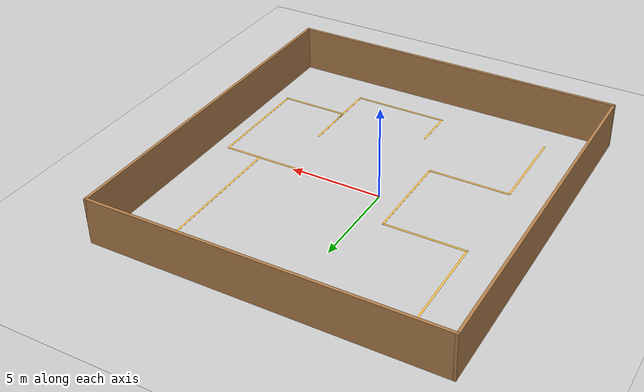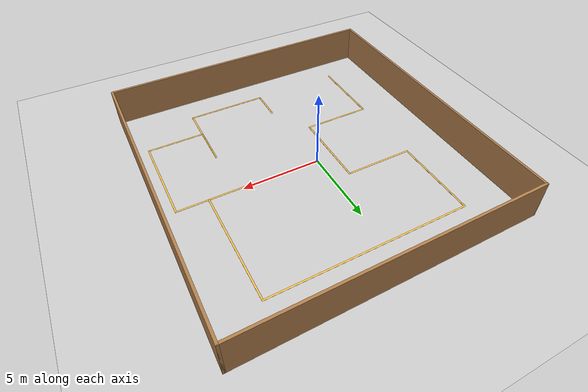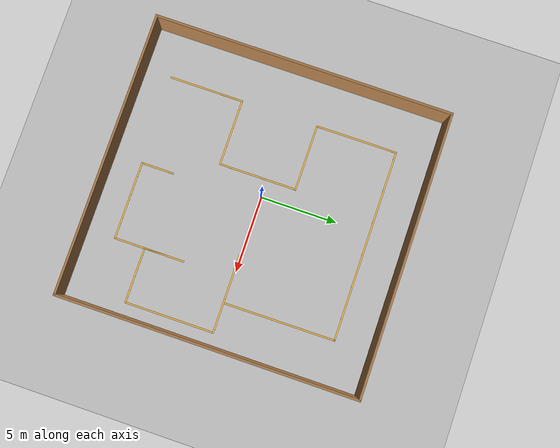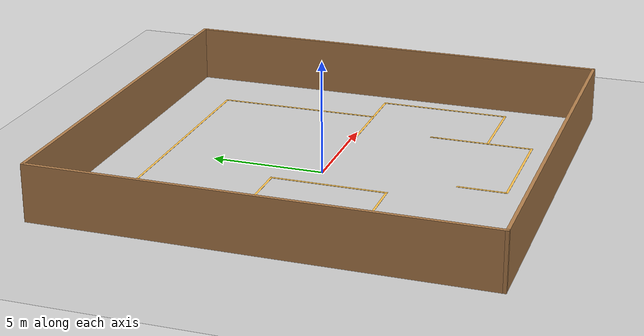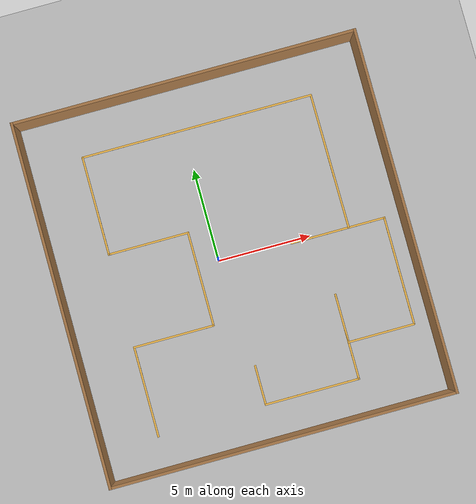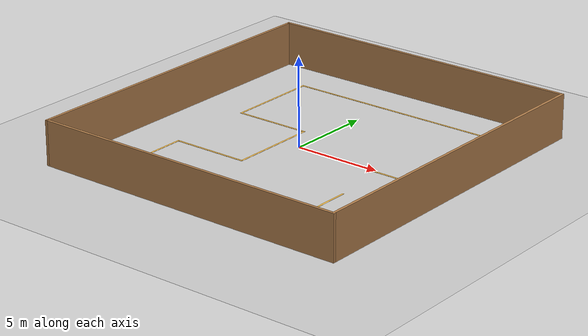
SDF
<sdf version="1.7">
 <world name="default">
  <light name="sun" type="directional">
   <pose>0 0 10 0 -0 0</pose>
   <diffuse>0.8 0.8 0.8 1</diffuse>
   <specular>0.2 0.2 0.2 1</specular>
   <attenuation>
    <range>1000</range>
    <constant>0.9</constant>
    <linear>0.01</linear>
    <quadratic>0.001</quadratic>
   </attenuation>
   <direction>-0.5 0.1 -0.9</direction>
   <spot><inner_angle>0</inner_angle><outer_angle>0</outer_angle><falloff>0</falloff></spot>
  </light>
  <model name="ground_plane">
   <static>1</static>
   <link name="link">
    <collision name="collision">
     <geometry><plane><normal>0 0 1</normal><size>100 100</size></plane></geometry>
     <surface><friction><ode><mu>100</mu><mu2>50</mu2></ode></friction></surface>
    </collision>
    <visual name="visual">
     <cast_shadows>0</cast_shadows>
     <geometry><plane><normal>0 0 1</normal><size>100 100</size></plane></geometry>
     <material>
      <script><uri>file://media/materials/scripts/gazebo.material</uri><name>Gazebo/Grey</name></script>
     </material>
    </visual>
   </link>
  </model>
  <gravity>0 0 -9.8</gravity>
  <magnetic_field>6e-06 2.3e-05 -4.2e-05</magnetic_field>
  <atmosphere type="adiabatic"/>
  <physics type="ode">
   <max_step_size>0.001</max_step_size>
   <real_time_factor>1</real_time_factor>
   <real_time_update_rate>1000</real_time_update_rate>
  </physics>
  <scene><ambient>0.4 0.4 0.4 1</ambient><background>0.7 0.7 0.7 1</background><shadows>1</shadows></scene>
  <audio><device>default</device></audio>
  <spherical_coordinates>
   <surface_model>EARTH_WGS84</surface_model>
   <latitude_deg>0</latitude_deg>
   <longitude_deg>0</longitude_deg>
   <elevation>0</elevation>
   <heading_deg>0</heading_deg>
  </spherical_coordinates>
  <model name="world">
   <pose>0.752345 -0.14285 0 0 -0 0</pose>
   <link name="Wall_30">
    <collision name="Wall_30_Collision">
     <geometry><box><size>19.5 0.15 2.5</size></box></geometry>
     <pose>0 0 1.25 0 -0 0</pose>
    </collision>
    <visual name="Wall_30_Visual">
     <pose>0 0 1.25 0 -0 0</pose>
     <geometry><box><size>19.5 0.15 2.5</size></box></geometry>
     <material>
      <script><uri>file://media/materials/scripts/gazebo.material</uri><name>Gazebo/Wood</name></script>
      <ambient>1 1 1 1</ambient>
     </material>
     <meta><layer>0</layer></meta>
    </visual>
    <pose>-9.175 0 0 0 -0 1.5708</pose>
   </link>
   <link name="Wall_31">
    <collision name="Wall_31_Collision">
     <geometry><box><size>18.5 0.15 2.5</size></box></geometry>
     <pose>0 0 1.25 0 -0 0</pose>
    </collision>
    <visual name="Wall_31_Visual">
     <pose>0 0 1.25 0 -0 0</pose>
     <geometry><box><size>18.5 0.15 2.5</size></box></geometry>
     <material>
      <script><uri>file://media/materials/scripts/gazebo.material</uri><name>Gazebo/Wood</name></script>
      <ambient>1 1 1 1</ambient>
     </material>
     <meta><layer>0</layer></meta>
    </visual>
    <pose>0 9.675 0 0 -0 0</pose>
   </link>
   <link name="Wall_32">
    <collision name="Wall_32_Collision">
     <geometry><box><size>19.5 0.15 2.5</size></box></geometry>
     <pose>0 0 1.25 0 -0 0</pose>
    </collision>
    <visual name="Wall_32_Visual">
     <pose>0 0 1.25 0 -0 0</pose>
     <geometry><box><size>19.5 0.15 2.5</size></box></geometry>
     <material>
      <script><uri>file://media/materials/scripts/gazebo.material</uri><name>Gazebo/Wood</name></script>
      <ambient>1 1 1 1</ambient>
     </material>
     <meta><layer>0</layer></meta>
    </visual>
    <pose>9.175 0 0 0 -0 -1.5708</pose>
   </link>
   <link name="Wall_33">
    <collision name="Wall_33_Collision">
     <geometry><box><size>18.5 0.15 2.5</size></box></geometry>
     <pose>0 0 1.25 0 -0 0</pose>
    </collision>
    <visual name="Wall_33_Visual">
     <pose>0 0 1.25 0 -0 0</pose>
     <geometry><box><size>18.5 0.15 2.5</size></box></geometry>
     <material>
      <script><uri>file://media/materials/scripts/gazebo.material</uri><name>Gazebo/Wood</name></script>
      <ambient>1 1 1 1</ambient>
     </material>
     <meta><layer>0</layer></meta>
    </visual>
    <pose>0 -9.675 0 0 -0 3.14159</pose>
   </link>
   <link name="Wall_35">
    <collision name="Wall_35_Collision">
     <geometry><box><size>4.94963 0.1 0.01</size></box></geometry>
     <pose>0 0 0.005 0 -0 0</pose>
    </collision>
    <visual name="Wall_35_Visual">
     <pose>0 0 0.005 0 -0 0</pose>
     <geometry><box><size>4.94963 0.1 0.01</size></box></geometry>
     <material>
      <script><uri>file://media/materials/scripts/gazebo.material</uri><name>Gazebo/Grey</name></script>
      <ambient>1 0.764706 0.305882 1</ambient>
     </material>
     <meta><layer>0</layer></meta>
    </visual>
    <pose>-6.28535 -5.50215 0 0 -0 1.5708</pose>
   </link>
   <link name="Wall_36">
    <collision name="Wall_36_Collision">
     <geometry><box><size>4.45 0.1 0.01</size></box></geometry>
     <pose>0 0 0.005 0 -0 0</pose>
    </collision>
    <visual name="Wall_36_Visual">
     <pose>0 0 0.005 0 -0 0</pose>
     <geometry><box><size>4.45 0.1 0.01</size></box></geometry>
     <material>
      <script><uri>file://media/materials/scripts/gazebo.material</uri><name>Gazebo/Grey</name></script>
      <ambient>1 0.764706 0.305882 1</ambient>
     </material>
     <meta><layer>0</layer></meta>
    </visual>
    <pose>-4.11034 -3.07715 0 0 -0 0</pose>
   </link>
   <link name="Wall_37">
    <collision name="Wall_37_Collision">
     <geometry><box><size>5.19963 0.1 0.01</size></box></geometry>
     <pose>0 0 0.005 0 -0 0</pose>
    </collision>
    <visual name="Wall_37_Visual">
     <pose>0 0 0.005 0 -0 0</pose>
     <geometry><box><size>5.19963 0.1 0.01</size></box></geometry>
     <material>
      <script><uri>file://media/materials/scripts/gazebo.material</uri><name>Gazebo/Grey</name></script>
      <ambient>1 0.764706 0.305882 1</ambient>
     </material>
     <meta><layer>0</layer></meta>
    </visual>
    <pose>-1.93535 -0.52715 0 0 -0 1.5708</pose>
   </link>
   <link name="Wall_38">
    <collision name="Wall_38_Collision">
     <geometry><box><size>4.44982 0.1 0.01</size></box></geometry>
     <pose>0 0 0.005 0 -0 0</pose>
    </collision>
    <visual name="Wall_38_Visual">
     <pose>0 0 0.005 0 -0 0</pose>
     <geometry><box><size>4.44982 0.1 0.01</size></box></geometry>
     <material>
      <script><uri>file://media/materials/scripts/gazebo.material</uri><name>Gazebo/Grey</name></script>
      <ambient>1 0.764706 0.305882 1</ambient>
     </material>
     <meta><layer>0</layer></meta>
    </visual>
    <pose>-4.11034 2.02285 0 0 -0 3.14159</pose>
   </link>
   <link name="Wall_39">
    <collision name="Wall_39_Collision">
     <geometry><box><size>5.44963 0.1 0.01</size></box></geometry>
     <pose>0 0 0.005 0 -0 0</pose>
    </collision>
    <visual name="Wall_39_Visual">
     <pose>0 0 0.005 0 -0 0</pose>
     <geometry><box><size>5.44963 0.1 0.01</size></box></geometry>
     <material>
      <script><uri>file://media/materials/scripts/gazebo.material</uri><name>Gazebo/Grey</name></script>
      <ambient>1 0.764706 0.305882 1</ambient>
     </material>
     <meta><layer>0</layer></meta>
    </visual>
    <pose>-6.28535 4.69785 0 0 -0 1.5708</pose>
   </link>
   <link name="Wall_40">
    <collision name="Wall_40_Collision">
     <geometry><box><size>12.7002 0.1 0.01</size></box></geometry>
     <pose>0 0 0.005 0 -0 0</pose>
    </collision>
    <visual name="Wall_40_Visual">
     <pose>0 0 0.005 0 -0 0</pose>
     <geometry><box><size>12.7002 0.1 0.01</size></box></geometry>
     <material>
      <script><uri>file://media/materials/scripts/gazebo.material</uri><name>Gazebo/Grey</name></script>
      <ambient>1 0.764706 0.305882 1</ambient>
     </material>
     <meta><layer>0</layer></meta>
    </visual>
    <pose>0.014655 7.37285 0 0 -0 0</pose>
   </link>
   <link name="Wall_41">
    <collision name="Wall_41_Collision">
     <geometry><box><size>7.41019 0.1 0.01</size></box></geometry>
     <pose>0 0 0.005 0 -0 0</pose>
    </collision>
    <visual name="Wall_41_Visual">
     <pose>0 0 0.005 0 -0 0</pose>
     <geometry><box><size>7.41019 0.1 0.01</size></box></geometry>
     <material>
      <script><uri>file://media/materials/scripts/gazebo.material</uri><name>Gazebo/Grey</name></script>
      <ambient>1 0.764706 0.305882 1</ambient>
     </material>
     <meta><layer>0</layer></meta>
    </visual>
    <pose>6.33462 3.71781 0 0 -0 -1.56533</pose>
   </link>
   <link name="Wall_44">
    <collision name="Wall_44_Collision">
     <geometry><box><size>5.95 0.1 0.01</size></box></geometry>
     <pose>0 0 0.005 0 -0 0</pose>
    </collision>
    <visual name="Wall_44_Visual">
     <pose>0 0 0.005 0 -0 0</pose>
     <geometry><box><size>5.95 0.1 0.01</size></box></geometry>
     <material>
      <script><uri>file://media/materials/scripts/gazebo.material</uri><name>Gazebo/Grey</name></script>
      <ambient>1 0.764706 0.305882 1</ambient>
     </material>
     <meta><layer>0</layer></meta>
    </visual>
    <pose>8.31466 -2.90215 0 0 -0 -1.5708</pose>
   </link>
   <link name="Wall_45">
    <collision name="Wall_45_Collision">
     <geometry><box><size>3.69982 0.1 0.01</size></box></geometry>
     <pose>0 0 0.005 0 -0 0</pose>
    </collision>
    <visual name="Wall_45_Visual">
     <pose>0 0 0.005 0 -0 0</pose>
     <geometry><box><size>3.69982 0.1 0.01</size></box></geometry>
     <material>
      <script><uri>file://media/materials/scripts/gazebo.material</uri><name>Gazebo/Grey</name></script>
      <ambient>1 0.764706 0.305882 1</ambient>
     </material>
     <meta><layer>0</layer></meta>
    </visual>
    <pose>6.51466 -5.82715 0 0 -0 3.14159</pose>
   </link>
   <link name="Wall_46">
    <collision name="Wall_46_Collision">
     <geometry><box><size>2.7 0.1 0.01</size></box></geometry>
     <pose>0 0 0.005 0 -0 0</pose>
    </collision>
    <visual name="Wall_46_Visual">
     <pose>0 0 0.005 0 -0 0</pose>
     <geometry><box><size>2.7 0.1 0.01</size></box></geometry>
     <material>
      <script><uri>file://media/materials/scripts/gazebo.material</uri><name>Gazebo/Grey</name></script>
      <ambient>1 0.764706 0.305882 1</ambient>
     </material>
     <meta><layer>0</layer></meta>
    </visual>
    <pose>4.71465 -4.52715 0 0 -0 1.5708</pose>
   </link>
   <link name="Wall_47">
    <collision name="Wall_47_Collision">
     <geometry><box><size>4.70037 0.1 0.01</size></box></geometry>
     <pose>0 0 0.005 0 -0 0</pose>
    </collision>
    <visual name="Wall_47_Visual">
     <pose>0 0 0.005 0 -0 0</pose>
     <geometry><box><size>4.70037 0.1 0.01</size></box></geometry>
     <material>
      <script><uri>file://media/materials/scripts/gazebo.material</uri><name>Gazebo/Grey</name></script>
      <ambient>1 0.764706 0.305882 1</ambient>
     </material>
     <meta><layer>0</layer></meta>
    </visual>
    <pose>4.71465 -5.52715 0 0 -0 -1.5708</pose>
   </link>
   <link name="Wall_48">
    <collision name="Wall_48_Collision">
     <geometry><box><size>5.19982 0.1 0.01</size></box></geometry>
     <pose>0 0 0.005 0 -0 0</pose>
    </collision>
    <visual name="Wall_48_Visual">
     <pose>0 0 0.005 0 -0 0</pose>
     <geometry><box><size>5.19982 0.1 0.01</size></box></geometry>
     <material>
      <script><uri>file://media/materials/scripts/gazebo.material</uri><name>Gazebo/Grey</name></script>
      <ambient>1 0.764706 0.305882 1</ambient>
     </material>
     <meta><layer>0</layer></meta>
    </visual>
    <pose>2.16466 -7.82715 0 0 -0 3.14159</pose>
   </link>
   <link name="Wall_49">
    <collision name="Wall_49_Collision">
     <geometry><box><size>2.19963 0.1 0.01</size></box></geometry>
     <pose>0 0 0.005 0 -0 0</pose>
    </collision>
    <visual name="Wall_49_Visual">
     <pose>0 0 0.005 0 -0 0</pose>
     <geometry><box><size>2.19963 0.1 0.01</size></box></geometry>
     <material>
      <script><uri>file://media/materials/scripts/gazebo.material</uri><name>Gazebo/Grey</name></script>
      <ambient>1 0.764706 0.305882 1</ambient>
     </material>
     <meta><layer>0</layer></meta>
    </visual>
    <pose>-0.385345 -6.77715 0 0 -0 1.5708</pose>
   </link>
   <link name="Wall_60">
    <collision name="Wall_60_Collision">
     <geometry><box><size>5.2 0.1 0.01</size></box></geometry>
     <pose>0 0 0.005 0 -0 0</pose>
    </collision>
    <visual name="Wall_60_Visual">
     <pose>0 0 0.005 0 -0 0</pose>
     <geometry><box><size>5.2 0.1 0.01</size></box></geometry>
     <material>
      <script><uri>file://media/materials/scripts/gazebo.material</uri><name>Gazebo/Grey</name></script>
      <ambient>1 0.764706 0.305882 1</ambient>
     </material>
     <meta><layer>0</layer></meta>
    </visual>
    <pose>5.76466 0.02285 0 0 -0 3.14159</pose>
   </link>
   <static>1</static>
  </model>
 </world>
</sdf>
